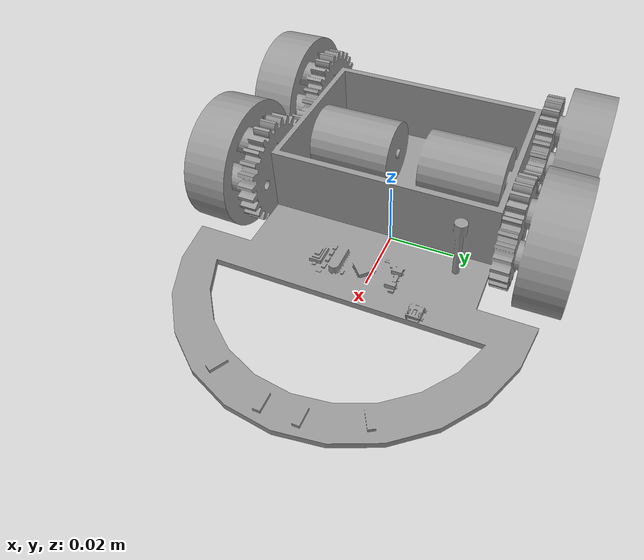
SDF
<?xml version="1.0" ?>
<sdf version="1.5">
  <model name="mic1">
    <static>false</static>
    <link name="link">
      <collision name="collision">
        <geometry>
          <mesh>
            <uri>model://mic1/meshes/micromouse.stl</uri>
            <scale>1 1 1</scale>
          </mesh>
        </geometry>
        <surface>
          <friction>
            <ode>
              <mu>100</mu>
              <mu2>50</mu2>
            </ode>
          </friction>
        </surface>
      </collision>
      <visual name="visual">
        <cast_shadows>false</cast_shadows>
        <geometry>
          <mesh>
            <uri>model://mic1/meshes/micromouse.stl</uri>
            <scale>0.001 0.001 0.001</scale>
          </mesh>
        </geometry>
        <material>
          <script>
            <uri>file://media/materials/scripts/gazebo.material</uri>
            <name>Gazebo/Grey</name>
          </script>
        </material>
      </visual>
    </link>
  </model>
</sdf>
